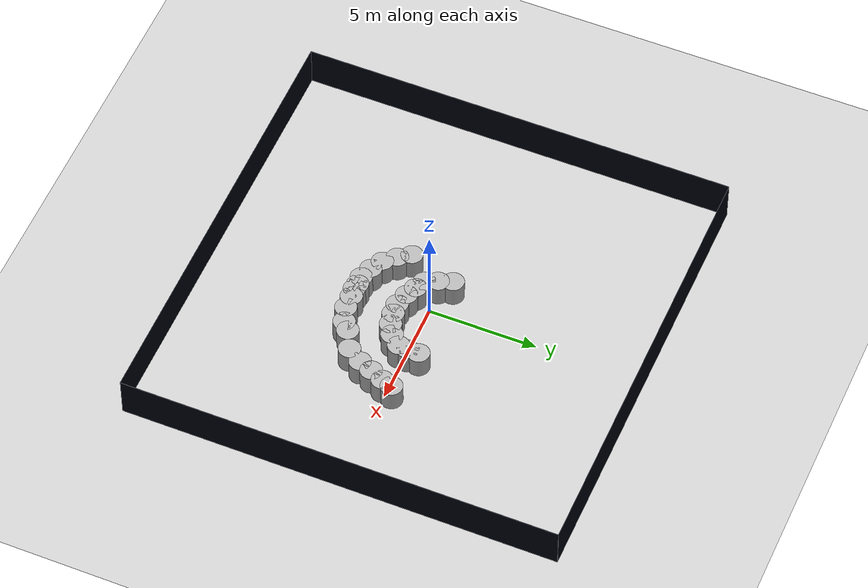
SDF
<sdf version="1.9">
 <world name="maze">
  <model name="ground_plane">
   <static>true</static>
   <link name="link">
    <collision name="collision">
     <geometry><plane><normal>0 0 1</normal><size>100 100</size></plane></geometry>
    </collision>
    <visual name="visual">
     <geometry><plane><normal>0 0 1</normal><size>100 100</size></plane></geometry>
     <material>
      <ambient>0.8 0.8 0.8 1</ambient>
      <diffuse>0.8 0.8 0.8 1</diffuse>
      <specular>0.8 0.8 0.8 1</specular>
     </material>
     <plugin name="__default__" filename="__default__"/>
    </visual>
    <inertial>
     <mass>1</mass>
     <inertia><ixx>1</ixx><ixy>0</ixy><ixz>0</ixz><iyy>1</iyy><iyz>0</iyz><izz>1</izz></inertia>
    </inertial>
   </link>
   <plugin name="__default__" filename="__default__"/>
  </model>
  <model name="border">
   <pose>0 0 1 0 -0 0</pose>
   <static>true</static>
   <link name="wall1">
    <pose>-10.005 0 0 0 -0 0</pose>
    <collision name="wall1_collision"><geometry><box><size>0.01 20 2</size></box></geometry></collision>
    <visual name="wall1_visual">
     <geometry><box><size>0.01 20 2</size></box></geometry>
     <material>
      <ambient>0.1 0.1 0.1 1</ambient>
      <diffuse>0 0.01 0.05 1</diffuse>
      <specular>0 0.01 0.05 1</specular>
     </material>
    </visual>
    <static>true</static>
    <inertial>
     <mass>1</mass>
     <inertia><ixx>1</ixx><ixy>0</ixy><ixz>0</ixz><iyy>1</iyy><iyz>0</iyz><izz>1</izz></inertia>
    </inertial>
   </link>
   <link name="wall2">
    <pose>10.005 0 0 0 -0 0</pose>
    <collision name="wall2_collision"><geometry><box><size>0.01 20 2</size></box></geometry></collision>
    <visual name="wall2_visual">
     <geometry><box><size>0.01 20 2</size></box></geometry>
     <material>
      <ambient>0.1 0.1 0.1 1</ambient>
      <diffuse>0 0.01 0.05 1</diffuse>
      <specular>0 0.01 0.05 1</specular>
     </material>
    </visual>
    <static>true</static>
    <inertial>
     <mass>1</mass>
     <inertia><ixx>1</ixx><ixy>0</ixy><ixz>0</ixz><iyy>1</iyy><iyz>0</iyz><izz>1</izz></inertia>
    </inertial>
   </link>
   <link name="wall3">
    <pose>0 10.005 0 0 -0 0</pose>
    <collision name="wall3_collision"><geometry><box><size>20 0.01 2</size></box></geometry></collision>
    <visual name="wall3_visual">
     <geometry><box><size>20 0.01 2</size></box></geometry>
     <material>
      <ambient>0.1 0.1 0.1 1</ambient>
      <diffuse>0 0.01 0.05 1</diffuse>
      <specular>0 0.01 0.05 1</specular>
     </material>
    </visual>
    <static>true</static>
    <inertial>
     <mass>1</mass>
     <inertia><ixx>1</ixx><ixy>0</ixy><ixz>0</ixz><iyy>1</iyy><iyz>0</iyz><izz>1</izz></inertia>
    </inertial>
   </link>
   <link name="wall4">
    <pose>0 -10.005 0 0 -0 0</pose>
    <collision name="wall4_collision">
     <geometry><box><size>20 0.01 2</size></box></geometry>
     <material>
      <ambient>0.1 0.1 0.1 1</ambient>
      <diffuse>0 0.01 0.05 1</diffuse>
      <specular>0 0.01 0.05 1</specular>
     </material>
    </collision>
    <visual name="wall4_visual">
     <geometry><box><size>20 0.01 2</size></box></geometry>
     <material>
      <ambient>0.1 0.1 0.1 1</ambient>
      <diffuse>0 0.01 0.05 1</diffuse>
      <specular>0 0.01 0.05 1</specular>
     </material>
    </visual>
    <static>true</static>
    <inertial>
     <mass>1</mass>
     <inertia><ixx>1</ixx><ixy>0</ixy><ixz>0</ixz><iyy>1</iyy><iyz>0</iyz><izz>1</izz></inertia>
    </inertial>
   </link>
  </model>
  <model name="cylinder_0">
   <pose>3.00521 -2.5561 0.5 0 -0 0</pose>
   <link name="cylinder_link">
    <inertial>
     <inertia>
      <ixx>0.14580000000000001</ixx>
      <ixy>0</ixy>
      <ixz>0</ixz>
      <iyy>0.14580000000000001</iyy>
      <iyz>0</iyz>
      <izz>0.125</izz>
     </inertia>
     <mass>1</mass>
    </inertial>
    <collision name="cylinder_collision">
     <geometry><cylinder><radius>0.5</radius><length>1</length></cylinder></geometry>
    </collision>
    <visual name="cylinder_visual">
     <geometry><cylinder><radius>0.5</radius><length>1</length></cylinder></geometry>
     <material>
      <ambient>0.3 0.3 0.3 1</ambient>
      <diffuse>0.7 0.7 0.7 1</diffuse>
      <specular>1 1 1 1</specular>
     </material>
    </visual>
   </link>
   <static>false</static>
  </model>
  <model name="cylinder_1">
   <pose>3.87354 -2.0961 0.5 0 -0 0</pose>
   <link name="cylinder_link">
    <inertial>
     <inertia>
      <ixx>0.14580000000000001</ixx>
      <ixy>0</ixy>
      <ixz>0</ixz>
      <iyy>0.14580000000000001</iyy>
      <iyz>0</iyz>
      <izz>0.125</izz>
     </inertia>
     <mass>1</mass>
    </inertial>
    <collision name="cylinder_collision">
     <geometry><cylinder><radius>0.5</radius><length>1</length></cylinder></geometry>
    </collision>
    <visual name="cylinder_visual">
     <geometry><cylinder><radius>0.5</radius><length>1</length></cylinder></geometry>
     <material>
      <ambient>0.3 0.3 0.3 1</ambient>
      <diffuse>0.7 0.7 0.7 1</diffuse>
      <specular>1 1 1 1</specular>
     </material>
    </visual>
   </link>
   <static>false</static>
  </model>
  <model name="cylinder_2">
   <pose>4.32003 -1.40842 0.5 0 -0 0</pose>
   <link name="cylinder_link">
    <inertial>
     <inertia>
      <ixx>0.14580000000000001</ixx>
      <ixy>0</ixy>
      <ixz>0</ixz>
      <iyy>0.14580000000000001</iyy>
      <iyz>0</iyz>
      <izz>0.125</izz>
     </inertia>
     <mass>1</mass>
    </inertial>
    <collision name="cylinder_collision">
     <geometry><cylinder><radius>0.5</radius><length>1</length></cylinder></geometry>
    </collision>
    <visual name="cylinder_visual">
     <geometry><cylinder><radius>0.5</radius><length>1</length></cylinder></geometry>
     <material>
      <ambient>0.3 0.3 0.3 1</ambient>
      <diffuse>0.7 0.7 0.7 1</diffuse>
      <specular>1 1 1 1</specular>
     </material>
    </visual>
   </link>
   <static>false</static>
  </model>
  <model name="cylinder_3">
   <pose>4.57445 -0.779737 0.5 0 -0 0</pose>
   <link name="cylinder_link">
    <inertial>
     <inertia>
      <ixx>0.14580000000000001</ixx>
      <ixy>0</ixy>
      <ixz>0</ixz>
      <iyy>0.14580000000000001</iyy>
      <iyz>0</iyz>
      <izz>0.125</izz>
     </inertia>
     <mass>1</mass>
    </inertial>
    <collision name="cylinder_collision">
     <geometry><cylinder><radius>0.5</radius><length>1</length></cylinder></geometry>
    </collision>
    <visual name="cylinder_visual">
     <geometry><cylinder><radius>0.5</radius><length>1</length></cylinder></geometry>
     <material>
      <ambient>0.3 0.3 0.3 1</ambient>
      <diffuse>0.7 0.7 0.7 1</diffuse>
      <specular>1 1 1 1</specular>
     </material>
    </visual>
   </link>
   <static>false</static>
  </model>
  <model name="cylinder_4">
   <pose>4.8528 -0.143647 0.5 0 -0 0</pose>
   <link name="cylinder_link">
    <inertial>
     <inertia>
      <ixx>0.14580000000000001</ixx>
      <ixy>0</ixy>
      <ixz>0</ixz>
      <iyy>0.14580000000000001</iyy>
      <iyz>0</iyz>
      <izz>0.125</izz>
     </inertia>
     <mass>1</mass>
    </inertial>
    <collision name="cylinder_collision">
     <geometry><cylinder><radius>0.5</radius><length>1</length></cylinder></geometry>
    </collision>
    <visual name="cylinder_visual">
     <geometry><cylinder><radius>0.5</radius><length>1</length></cylinder></geometry>
     <material>
      <ambient>0.3 0.3 0.3 1</ambient>
      <diffuse>0.7 0.7 0.7 1</diffuse>
      <specular>1 1 1 1</specular>
     </material>
    </visual>
   </link>
   <static>false</static>
  </model>
  <model name="cylinder_5">
   <pose>5.00234 0.347947 0.5 0 -0 0</pose>
   <link name="cylinder_link">
    <inertial>
     <inertia>
      <ixx>0.14580000000000001</ixx>
      <ixy>0</ixy>
      <ixz>0</ixz>
      <iyy>0.14580000000000001</iyy>
      <iyz>0</iyz>
      <izz>0.125</izz>
     </inertia>
     <mass>1</mass>
    </inertial>
    <collision name="cylinder_collision">
     <geometry><cylinder><radius>0.5</radius><length>1</length></cylinder></geometry>
    </collision>
    <visual name="cylinder_visual">
     <geometry><cylinder><radius>0.5</radius><length>1</length></cylinder></geometry>
     <material>
      <ambient>0.3 0.3 0.3 1</ambient>
      <diffuse>0.7 0.7 0.7 1</diffuse>
      <specular>1 1 1 1</specular>
     </material>
    </visual>
   </link>
   <static>false</static>
  </model>
  <model name="cylinder_8">
   <pose>1.9737 -0.993589 0.5 0 -0 0</pose>
   <link name="cylinder_link">
    <inertial>
     <inertia>
      <ixx>0.14580000000000001</ixx>
      <ixy>0</ixy>
      <ixz>0</ixz>
      <iyy>0.14580000000000001</iyy>
      <iyz>0</iyz>
      <izz>0.125</izz>
     </inertia>
     <mass>1</mass>
    </inertial>
    <collision name="cylinder_collision">
     <geometry><cylinder><radius>0.5</radius><length>1</length></cylinder></geometry>
    </collision>
    <visual name="cylinder_visual">
     <geometry><cylinder><radius>0.5</radius><length>1</length></cylinder></geometry>
     <material>
      <ambient>0.3 0.3 0.3 1</ambient>
      <diffuse>0.7 0.7 0.7 1</diffuse>
      <specular>1 1 1 1</specular>
     </material>
    </visual>
   </link>
   <static>false</static>
  </model>
  <model name="cylinder_9">
   <pose>2.46111 -0.714718 0.5 0 -0 0</pose>
   <link name="cylinder_link">
    <inertial>
     <inertia>
      <ixx>0.14580000000000001</ixx>
      <ixy>0</ixy>
      <ixz>0</ixz>
      <iyy>0.14580000000000001</iyy>
      <iyz>0</iyz>
      <izz>0.125</izz>
     </inertia>
     <mass>1</mass>
    </inertial>
    <collision name="cylinder_collision">
     <geometry><cylinder><radius>0.5</radius><length>1</length></cylinder></geometry>
    </collision>
    <visual name="cylinder_visual">
     <geometry><cylinder><radius>0.5</radius><length>1</length></cylinder></geometry>
     <material>
      <ambient>0.3 0.3 0.3 1</ambient>
      <diffuse>0.7 0.7 0.7 1</diffuse>
      <specular>1 1 1 1</specular>
     </material>
    </visual>
   </link>
   <static>false</static>
  </model>
  <model name="cylinder_10">
   <pose>2.89554 -0.219933 0.5 0 -0 0</pose>
   <link name="cylinder_link">
    <inertial>
     <inertia>
      <ixx>0.14580000000000001</ixx>
      <ixy>0</ixy>
      <ixz>0</ixz>
      <iyy>0.14580000000000001</iyy>
      <iyz>0</iyz>
      <izz>0.125</izz>
     </inertia>
     <mass>1</mass>
    </inertial>
    <collision name="cylinder_collision">
     <geometry><cylinder><radius>0.5</radius><length>1</length></cylinder></geometry>
    </collision>
    <visual name="cylinder_visual">
     <geometry><cylinder><radius>0.5</radius><length>1</length></cylinder></geometry>
     <material>
      <ambient>0.3 0.3 0.3 1</ambient>
      <diffuse>0.7 0.7 0.7 1</diffuse>
      <specular>1 1 1 1</specular>
     </material>
    </visual>
   </link>
   <static>false</static>
  </model>
  <model name="cylinder_11">
   <pose>2.93304 0.219179 0.5 0 -0 0</pose>
   <link name="cylinder_link">
    <inertial>
     <inertia>
      <ixx>0.14580000000000001</ixx>
      <ixy>0</ixy>
      <ixz>0</ixz>
      <iyy>0.14580000000000001</iyy>
      <iyz>0</iyz>
      <izz>0.125</izz>
     </inertia>
     <mass>1</mass>
    </inertial>
    <collision name="cylinder_collision">
     <geometry><cylinder><radius>0.5</radius><length>1</length></cylinder></geometry>
    </collision>
    <visual name="cylinder_visual">
     <geometry><cylinder><radius>0.5</radius><length>1</length></cylinder></geometry>
     <material>
      <ambient>0.3 0.3 0.3 1</ambient>
      <diffuse>0.7 0.7 0.7 1</diffuse>
      <specular>1 1 1 1</specular>
     </material>
    </visual>
   </link>
   <static>false</static>
  </model>
  <model name="cylinder_12">
   <pose>2.94015 0.728418 0.5 0 -0 0</pose>
   <link name="cylinder_link">
    <inertial>
     <inertia>
      <ixx>0.14580000000000001</ixx>
      <ixy>0</ixy>
      <ixz>0</ixz>
      <iyy>0.14580000000000001</iyy>
      <iyz>0</iyz>
      <izz>0.125</izz>
     </inertia>
     <mass>1</mass>
    </inertial>
    <collision name="cylinder_collision">
     <geometry><cylinder><radius>0.5</radius><length>1</length></cylinder></geometry>
    </collision>
    <visual name="cylinder_visual">
     <geometry><cylinder><radius>0.5</radius><length>1</length></cylinder></geometry>
     <material>
      <ambient>0.3 0.3 0.3 1</ambient>
      <diffuse>0.7 0.7 0.7 1</diffuse>
      <specular>1 1 1 1</specular>
     </material>
    </visual>
   </link>
   <static>false</static>
  </model>
  <model name="cylinder_42">
   <pose>-1.19338 0.604753 0.5 0 -0 0</pose>
   <link name="cylinder_link">
    <inertial>
     <inertia>
      <ixx>0.14580000000000001</ixx>
      <ixy>0</ixy>
      <ixz>0</ixz>
      <iyy>0.14580000000000001</iyy>
      <iyz>0</iyz>
      <izz>0.125</izz>
     </inertia>
     <mass>1</mass>
    </inertial>
    <collision name="cylinder_collision">
     <geometry><cylinder><radius>0.5</radius><length>1</length></cylinder></geometry>
    </collision>
    <visual name="cylinder_visual">
     <geometry><cylinder><radius>0.5</radius><length>1</length></cylinder></geometry>
     <material>
      <ambient>0.3 0.3 0.3 1</ambient>
      <diffuse>0.7 0.7 0.7 1</diffuse>
      <specular>1 1 1 1</specular>
     </material>
    </visual>
   </link>
   <static>false</static>
  </model>
  <model name="cylinder_0_1">
   <pose>2.62267 -2.89394 0.5 0 -0 0</pose>
   <link name="cylinder_link">
    <inertial>
     <inertia>
      <ixx>0.14580000000000001</ixx>
      <ixy>0</ixy>
      <ixz>0</ixz>
      <iyy>0.14580000000000001</iyy>
      <iyz>0</iyz>
      <izz>0.125</izz>
     </inertia>
     <mass>1</mass>
    </inertial>
    <collision name="cylinder_collision">
     <geometry><cylinder><radius>0.5</radius><length>1</length></cylinder></geometry>
    </collision>
    <visual name="cylinder_visual">
     <geometry><cylinder><radius>0.5</radius><length>1</length></cylinder></geometry>
     <material>
      <ambient>0.3 0.3 0.3 1</ambient>
      <diffuse>0.7 0.7 0.7 1</diffuse>
      <specular>1 1 1 1</specular>
     </material>
    </visual>
   </link>
   <static>false</static>
  </model>
  <model name="cylinder_0_2">
   <pose>1.39716 -1.1188 0.5 0 -0 0</pose>
   <link name="cylinder_link">
    <inertial>
     <inertia>
      <ixx>0.14580000000000001</ixx>
      <ixy>0</ixy>
      <ixz>0</ixz>
      <iyy>0.14580000000000001</iyy>
      <iyz>0</iyz>
      <izz>0.125</izz>
     </inertia>
     <mass>1</mass>
    </inertial>
    <collision name="cylinder_collision">
     <geometry><cylinder><radius>0.5</radius><length>1</length></cylinder></geometry>
    </collision>
    <visual name="cylinder_visual">
     <geometry><cylinder><radius>0.5</radius><length>1</length></cylinder></geometry>
     <material>
      <ambient>0.3 0.3 0.3 1</ambient>
      <diffuse>0.7 0.7 0.7 1</diffuse>
      <specular>1 1 1 1</specular>
     </material>
    </visual>
   </link>
   <static>false</static>
  </model>
  <model name="cylinder_0_3">
   <pose>0.861751 -1.15596 0.5 0 -0 0</pose>
   <link name="cylinder_link">
    <inertial>
     <inertia>
      <ixx>0.14580000000000001</ixx>
      <ixy>0</ixy>
      <ixz>0</ixz>
      <iyy>0.14580000000000001</iyy>
      <iyz>0</iyz>
      <izz>0.125</izz>
     </inertia>
     <mass>1</mass>
    </inertial>
    <collision name="cylinder_collision">
     <geometry><cylinder><radius>0.5</radius><length>1</length></cylinder></geometry>
    </collision>
    <visual name="cylinder_visual">
     <geometry><cylinder><radius>0.5</radius><length>1</length></cylinder></geometry>
     <material>
      <ambient>0.3 0.3 0.3 1</ambient>
      <diffuse>0.7 0.7 0.7 1</diffuse>
      <specular>1 1 1 1</specular>
     </material>
    </visual>
   </link>
   <static>false</static>
  </model>
  <model name="cylinder_0_4">
   <pose>0.24812 -0.982019 0.5 0 -0 0</pose>
   <link name="cylinder_link">
    <inertial>
     <inertia>
      <ixx>0.14580000000000001</ixx>
      <ixy>0</ixy>
      <ixz>0</ixz>
      <iyy>0.14580000000000001</iyy>
      <iyz>0</iyz>
      <izz>0.125</izz>
     </inertia>
     <mass>1</mass>
    </inertial>
    <collision name="cylinder_collision">
     <geometry><cylinder><radius>0.5</radius><length>1</length></cylinder></geometry>
    </collision>
    <visual name="cylinder_visual">
     <geometry><cylinder><radius>0.5</radius><length>1</length></cylinder></geometry>
     <material>
      <ambient>0.3 0.3 0.3 1</ambient>
      <diffuse>0.7 0.7 0.7 1</diffuse>
      <specular>1 1 1 1</specular>
     </material>
    </visual>
   </link>
   <static>false</static>
  </model>
  <model name="cylinder_0_5">
   <pose>-0.249976 -0.761865 0.5 0 -0 0</pose>
   <link name="cylinder_link">
    <inertial>
     <inertia>
      <ixx>0.14580000000000001</ixx>
      <ixy>0</ixy>
      <ixz>0</ixz>
      <iyy>0.14580000000000001</iyy>
      <iyz>0</iyz>
      <izz>0.125</izz>
     </inertia>
     <mass>1</mass>
    </inertial>
    <collision name="cylinder_collision">
     <geometry><cylinder><radius>0.5</radius><length>1</length></cylinder></geometry>
    </collision>
    <visual name="cylinder_visual">
     <geometry><cylinder><radius>0.5</radius><length>1</length></cylinder></geometry>
     <material>
      <ambient>0.3 0.3 0.3 1</ambient>
      <diffuse>0.7 0.7 0.7 1</diffuse>
      <specular>1 1 1 1</specular>
     </material>
    </visual>
   </link>
   <static>false</static>
  </model>
  <model name="cylinder_0_6">
   <pose>-0.722068 -0.551048 0.5 0 -0 0</pose>
   <link name="cylinder_link">
    <inertial>
     <inertia>
      <ixx>0.14580000000000001</ixx>
      <ixy>0</ixy>
      <ixz>0</ixz>
      <iyy>0.14580000000000001</iyy>
      <iyz>0</iyz>
      <izz>0.125</izz>
     </inertia>
     <mass>1</mass>
    </inertial>
    <collision name="cylinder_collision">
     <geometry><cylinder><radius>0.5</radius><length>1</length></cylinder></geometry>
    </collision>
    <visual name="cylinder_visual">
     <geometry><cylinder><radius>0.5</radius><length>1</length></cylinder></geometry>
     <material>
      <ambient>0.3 0.3 0.3 1</ambient>
      <diffuse>0.7 0.7 0.7 1</diffuse>
      <specular>1 1 1 1</specular>
     </material>
    </visual>
   </link>
   <static>false</static>
  </model>
  <model name="cylinder_0_7">
   <pose>-0.961186 -0.006782 0.5 0 -0 0</pose>
   <link name="cylinder_link">
    <inertial>
     <inertia>
      <ixx>0.14580000000000001</ixx>
      <ixy>0</ixy>
      <ixz>0</ixz>
      <iyy>0.14580000000000001</iyy>
      <iyz>0</iyz>
      <izz>0.125</izz>
     </inertia>
     <mass>1</mass>
    </inertial>
    <collision name="cylinder_collision">
     <geometry><cylinder><radius>0.5</radius><length>1</length></cylinder></geometry>
    </collision>
    <visual name="cylinder_visual">
     <geometry><cylinder><radius>0.5</radius><length>1</length></cylinder></geometry>
     <material>
      <ambient>0.3 0.3 0.3 1</ambient>
      <diffuse>0.7 0.7 0.7 1</diffuse>
      <specular>1 1 1 1</specular>
     </material>
    </visual>
   </link>
   <static>false</static>
  </model>
  <model name="cylinder_0_8">
   <pose>1.89612 -3.13033 0.5 0 -0 0</pose>
   <link name="cylinder_link">
    <inertial>
     <inertia>
      <ixx>0.14580000000000001</ixx>
      <ixy>0</ixy>
      <ixz>0</ixz>
      <iyy>0.14580000000000001</iyy>
      <iyz>0</iyz>
      <izz>0.125</izz>
     </inertia>
     <mass>1</mass>
    </inertial>
    <collision name="cylinder_collision">
     <geometry><cylinder><radius>0.5</radius><length>1</length></cylinder></geometry>
    </collision>
    <visual name="cylinder_visual">
     <geometry><cylinder><radius>0.5</radius><length>1</length></cylinder></geometry>
     <material>
      <ambient>0.3 0.3 0.3 1</ambient>
      <diffuse>0.7 0.7 0.7 1</diffuse>
      <specular>1 1 1 1</specular>
     </material>
    </visual>
   </link>
   <static>false</static>
  </model>
  <model name="cylinder_0_9">
   <pose>1.24784 -3.1508 0.5 0 -0 0</pose>
   <link name="cylinder_link">
    <inertial>
     <inertia>
      <ixx>0.14580000000000001</ixx>
      <ixy>0</ixy>
      <ixz>0</ixz>
      <iyy>0.14580000000000001</iyy>
      <iyz>0</iyz>
      <izz>0.125</izz>
     </inertia>
     <mass>1</mass>
    </inertial>
    <collision name="cylinder_collision">
     <geometry><cylinder><radius>0.5</radius><length>1</length></cylinder></geometry>
    </collision>
    <visual name="cylinder_visual">
     <geometry><cylinder><radius>0.5</radius><length>1</length></cylinder></geometry>
     <material>
      <ambient>0.3 0.3 0.3 1</ambient>
      <diffuse>0.7 0.7 0.7 1</diffuse>
      <specular>1 1 1 1</specular>
     </material>
    </visual>
   </link>
   <static>false</static>
  </model>
  <model name="cylinder_0_10">
   <pose>0.809572 -3.19668 0.5 0 -0 0</pose>
   <link name="cylinder_link">
    <inertial>
     <inertia>
      <ixx>0.14580000000000001</ixx>
      <ixy>0</ixy>
      <ixz>0</ixz>
      <iyy>0.14580000000000001</iyy>
      <iyz>0</iyz>
      <izz>0.125</izz>
     </inertia>
     <mass>1</mass>
    </inertial>
    <collision name="cylinder_collision">
     <geometry><cylinder><radius>0.5</radius><length>1</length></cylinder></geometry>
    </collision>
    <visual name="cylinder_visual">
     <geometry><cylinder><radius>0.5</radius><length>1</length></cylinder></geometry>
     <material>
      <ambient>0.3 0.3 0.3 1</ambient>
      <diffuse>0.7 0.7 0.7 1</diffuse>
      <specular>1 1 1 1</specular>
     </material>
    </visual>
   </link>
   <static>false</static>
  </model>
  <model name="cylinder_0_11">
   <pose>0.536027 -3.1671 0.5 0 -0 0</pose>
   <link name="cylinder_link">
    <inertial>
     <inertia>
      <ixx>0.14580000000000001</ixx>
      <ixy>0</ixy>
      <ixz>0</ixz>
      <iyy>0.14580000000000001</iyy>
      <iyz>0</iyz>
      <izz>0.125</izz>
     </inertia>
     <mass>1</mass>
    </inertial>
    <collision name="cylinder_collision">
     <geometry><cylinder><radius>0.5</radius><length>1</length></cylinder></geometry>
    </collision>
    <visual name="cylinder_visual">
     <geometry><cylinder><radius>0.5</radius><length>1</length></cylinder></geometry>
     <material>
      <ambient>0.3 0.3 0.3 1</ambient>
      <diffuse>0.7 0.7 0.7 1</diffuse>
      <specular>1 1 1 1</specular>
     </material>
    </visual>
   </link>
   <static>false</static>
  </model>
  <model name="cylinder_0_12">
   <pose>0.113543 -3.17435 0.5 0 -0 0</pose>
   <link name="cylinder_link">
    <inertial>
     <inertia>
      <ixx>0.14580000000000001</ixx>
      <ixy>0</ixy>
      <ixz>0</ixz>
      <iyy>0.14580000000000001</iyy>
      <iyz>0</iyz>
      <izz>0.125</izz>
     </inertia>
     <mass>1</mass>
    </inertial>
    <collision name="cylinder_collision">
     <geometry><cylinder><radius>0.5</radius><length>1</length></cylinder></geometry>
    </collision>
    <visual name="cylinder_visual">
     <geometry><cylinder><radius>0.5</radius><length>1</length></cylinder></geometry>
     <material>
      <ambient>0.3 0.3 0.3 1</ambient>
      <diffuse>0.7 0.7 0.7 1</diffuse>
      <specular>1 1 1 1</specular>
     </material>
    </visual>
   </link>
   <static>false</static>
  </model>
  <model name="cylinder_0_13">
   <pose>-0.471484 -2.97216 0.5 0 -0 0</pose>
   <link name="cylinder_link">
    <inertial>
     <inertia>
      <ixx>0.14580000000000001</ixx>
      <ixy>0</ixy>
      <ixz>0</ixz>
      <iyy>0.14580000000000001</iyy>
      <iyz>0</iyz>
      <izz>0.125</izz>
     </inertia>
     <mass>1</mass>
    </inertial>
    <collision name="cylinder_collision">
     <geometry><cylinder><radius>0.5</radius><length>1</length></cylinder></geometry>
    </collision>
    <visual name="cylinder_visual">
     <geometry><cylinder><radius>0.5</radius><length>1</length></cylinder></geometry>
     <material>
      <ambient>0.3 0.3 0.3 1</ambient>
      <diffuse>0.7 0.7 0.7 1</diffuse>
      <specular>1 1 1 1</specular>
     </material>
    </visual>
   </link>
   <static>false</static>
  </model>
  <model name="cylinder_0_14">
   <pose>-1.02988 -2.66924 0.5 0 -0 0</pose>
   <link name="cylinder_link">
    <inertial>
     <inertia>
      <ixx>0.14580000000000001</ixx>
      <ixy>0</ixy>
      <ixz>0</ixz>
      <iyy>0.14580000000000001</iyy>
      <iyz>0</iyz>
      <izz>0.125</izz>
     </inertia>
     <mass>1</mass>
    </inertial>
    <collision name="cylinder_collision">
     <geometry><cylinder><radius>0.5</radius><length>1</length></cylinder></geometry>
    </collision>
    <visual name="cylinder_visual">
     <geometry><cylinder><radius>0.5</radius><length>1</length></cylinder></geometry>
     <material>
      <ambient>0.3 0.3 0.3 1</ambient>
      <diffuse>0.7 0.7 0.7 1</diffuse>
      <specular>1 1 1 1</specular>
     </material>
    </visual>
   </link>
   <static>false</static>
  </model>
  <model name="cylinder_0_15">
   <pose>-1.48561 -2.15735 0.5 0 -0 0</pose>
   <link name="cylinder_link">
    <inertial>
     <inertia>
      <ixx>0.14580000000000001</ixx>
      <ixy>0</ixy>
      <ixz>0</ixz>
      <iyy>0.14580000000000001</iyy>
      <iyz>0</iyz>
      <izz>0.125</izz>
     </inertia>
     <mass>1</mass>
    </inertial>
    <collision name="cylinder_collision">
     <geometry><cylinder><radius>0.5</radius><length>1</length></cylinder></geometry>
    </collision>
    <visual name="cylinder_visual">
     <geometry><cylinder><radius>0.5</radius><length>1</length></cylinder></geometry>
     <material>
      <ambient>0.3 0.3 0.3 1</ambient>
      <diffuse>0.7 0.7 0.7 1</diffuse>
      <specular>1 1 1 1</specular>
     </material>
    </visual>
   </link>
   <static>false</static>
  </model>
  <model name="cylinder_0_16">
   <pose>-1.86579 -1.62213 0.5 0 -0 0</pose>
   <link name="cylinder_link">
    <inertial>
     <inertia>
      <ixx>0.14580000000000001</ixx>
      <ixy>0</ixy>
      <ixz>0</ixz>
      <iyy>0.14580000000000001</iyy>
      <iyz>0</iyz>
      <izz>0.125</izz>
     </inertia>
     <mass>1</mass>
    </inertial>
    <collision name="cylinder_collision">
     <geometry><cylinder><radius>0.5</radius><length>1</length></cylinder></geometry>
    </collision>
    <visual name="cylinder_visual">
     <geometry><cylinder><radius>0.5</radius><length>1</length></cylinder></geometry>
     <material>
      <ambient>0.3 0.3 0.3 1</ambient>
      <diffuse>0.7 0.7 0.7 1</diffuse>
      <specular>1 1 1 1</specular>
     </material>
    </visual>
   </link>
   <static>false</static>
  </model>
 </world>
</sdf>
